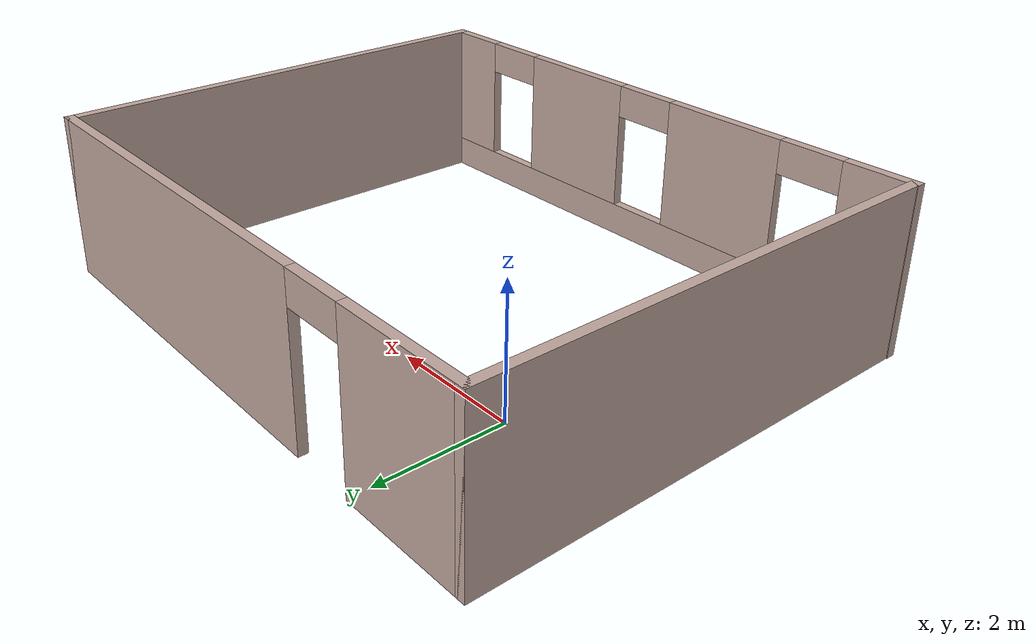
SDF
<?xml version='1.0'?>
<sdf version='1.6'>
  <model name='room'>
    <pose frame=''>2.49494 -1.375 0 0 -0 0</pose>
    <link name='Wall_10'>
      <collision name='Wall_10_Collision'>
        <geometry>
          <box>
            <size>7.4 0.15 2.5</size>
          </box>
        </geometry>
        <pose frame=''>0 0 1.25 0 -0 0</pose>
      </collision>
      <visual name='Wall_10_Visual'>
        <pose frame=''>0 0 1.25 0 -0 0</pose>
        <geometry>
          <box>
            <size>7.4 0.15 2.5</size>
          </box>
        </geometry>
        <material>
          <script>
            <uri>file://media/materials/scripts/gazebo.material</uri>
            <name>Gazebo/Grey</name>
          </script>
          <ambient>0.760784 0.662745 0.627451 1</ambient>
        </material>
      </visual>
      <pose frame=''>-4.49494 0 0 0 -0 1.5708</pose>
    </link>
    <link name='Wall_12'>
      <collision name='Wall_12_Collision'>
        <geometry>
          <box>
            <size>7.4 0.15 2.5</size>
          </box>
        </geometry>
        <pose frame=''>0 0 1.25 0 -0 0</pose>
      </collision>
      <visual name='Wall_12_Visual'>
        <pose frame=''>0 0 1.25 0 -0 0</pose>
        <geometry>
          <box>
            <size>7.4 0.15 2.5</size>
          </box>
        </geometry>
        <material>
          <script>
            <uri>file://media/materials/scripts/gazebo.material</uri>
            <name>Gazebo/Grey</name>
          </script>
          <ambient>0.760784 0.662745 0.627451 1</ambient>
        </material>
      </visual>
      <pose frame=''>4.50506 0 0 0 -0 1.5708</pose>
    </link>
    <link name='Wall_3'>
      <pose frame=''>0.005064 3.625 0 0 -0 0</pose>
      <visual name='Wall_3_Visual_0'>
        <pose frame=''>-3.5375 0 1.25 0 -0 0</pose>
        <geometry>
          <box>
            <size>2.075 0.15 2.5</size>
          </box>
        </geometry>
        <material>
          <script>
            <uri>file://media/materials/scripts/gazebo.material</uri>
            <name>Gazebo/Grey</name>
          </script>
          <ambient>0.760784 0.662745 0.627451 1</ambient>
        </material>
      </visual>
      <collision name='Wall_3_Collision_0'>
        <geometry>
          <box>
            <size>2.075 0.15 2.5</size>
          </box>
        </geometry>
        <pose frame=''>-3.5375 0 1.25 0 -0 0</pose>
      </collision>
      <visual name='Wall_3_Visual_1'>
        <pose frame=''>1.5375 0 1.25 0 -0 0</pose>
        <geometry>
          <box>
            <size>6.075 0.15 2.5</size>
          </box>
        </geometry>
        <material>
          <script>
            <uri>file://media/materials/scripts/gazebo.material</uri>
            <name>Gazebo/Grey</name>
          </script>
          <ambient>0.760784 0.662745 0.627451 1</ambient>
        </material>
      </visual>
      <collision name='Wall_3_Collision_1'>
        <geometry>
          <box>
            <size>6.075 0.15 2.5</size>
          </box>
        </geometry>
        <pose frame=''>1.5375 0 1.25 0 -0 0</pose>
      </collision>
      <visual name='Wall_3_Visual_2'>
        <pose frame=''>-2 0 2.25 0 -0 0</pose>
        <geometry>
          <box>
            <size>1 0.15 0.5</size>
          </box>
        </geometry>
        <material>
          <script>
            <uri>file://media/materials/scripts/gazebo.material</uri>
            <name>Gazebo/Grey</name>
          </script>
          <ambient>0.760784 0.662745 0.627451 1</ambient>
        </material>
      </visual>
      <collision name='Wall_3_Collision_2'>
        <geometry>
          <box>
            <size>1 0.15 0.5</size>
          </box>
        </geometry>
        <pose frame=''>-2 0 2.25 0 -0 0</pose>
      </collision>
    </link>
    <link name='Wall_8'>
      <pose frame=''>-0.005064 -3.625 0 0 -0 0</pose>
      <visual name='Wall_8_Visual_0'>
        <pose frame=''>-4.03244 0 1.25 0 -0 0</pose>
        <geometry>
          <box>
            <size>1.08513 0.15 2.5</size>
          </box>
        </geometry>
        <material>
          <script>
            <uri>file://media/materials/scripts/gazebo.material</uri>
            <name>Gazebo/Grey</name>
          </script>
          <ambient>0.760784 0.662745 0.627451 1</ambient>
        </material>
      </visual>
      <collision name='Wall_8_Collision_0'>
        <geometry>
          <box>
            <size>1.08513 0.15 2.5</size>
          </box>
        </geometry>
        <pose frame=''>-4.03244 0 1.25 0 -0 0</pose>
      </collision>
      <visual name='Wall_8_Visual_1'>
        <pose frame=''>0.542564 0 0.25 0 -0 0</pose>
        <geometry>
          <box>
            <size>8.06487 0.15 0.5</size>
          </box>
        </geometry>
        <material>
          <script>
            <uri>file://media/materials/scripts/gazebo.material</uri>
            <name>Gazebo/Grey</name>
          </script>
          <ambient>0.760784 0.662745 0.627451 1</ambient>
        </material>
      </visual>
      <collision name='Wall_8_Collision_1'>
        <geometry>
          <box>
            <size>8.06487 0.15 0.5</size>
          </box>
        </geometry>
        <pose frame=''>0.542564 0 0.25 0 -0 0</pose>
      </collision>
      <visual name='Wall_8_Visual_2'>
        <pose frame=''>-1.48987 0 1.5 0 -0 0</pose>
        <geometry>
          <box>
            <size>2 0.15 2</size>
          </box>
        </geometry>
        <material>
          <script>
            <uri>file://media/materials/scripts/gazebo.material</uri>
            <name>Gazebo/Grey</name>
          </script>
          <ambient>0.760784 0.662745 0.627451 1</ambient>
        </material>
      </visual>
      <collision name='Wall_8_Collision_2'>
        <geometry>
          <box>
            <size>2 0.15 2</size>
          </box>
        </geometry>
        <pose frame=''>-1.48987 0 1.5 0 -0 0</pose>
      </collision>
      <visual name='Wall_8_Visual_3'>
        <pose frame=''>1.51013 0 1.5 0 -0 0</pose>
        <geometry>
          <box>
            <size>2 0.15 2</size>
          </box>
        </geometry>
        <material>
          <script>
            <uri>file://media/materials/scripts/gazebo.material</uri>
            <name>Gazebo/Grey</name>
          </script>
          <ambient>0.760784 0.662745 0.627451 1</ambient>
        </material>
      </visual>
      <collision name='Wall_8_Collision_3'>
        <geometry>
          <box>
            <size>2 0.15 2</size>
          </box>
        </geometry>
        <pose frame=''>1.51013 0 1.5 0 -0 0</pose>
      </collision>
      <visual name='Wall_8_Visual_4'>
        <pose frame=''>4.04256 0 1.5 0 -0 0</pose>
        <geometry>
          <box>
            <size>1.06487 0.15 2</size>
          </box>
        </geometry>
        <material>
          <script>
            <uri>file://media/materials/scripts/gazebo.material</uri>
            <name>Gazebo/Grey</name>
          </script>
          <ambient>0.760784 0.662745 0.627451 1</ambient>
        </material>
      </visual>
      <collision name='Wall_8_Collision_4'>
        <geometry>
          <box>
            <size>1.06487 0.15 2</size>
          </box>
        </geometry>
        <pose frame=''>4.04256 0 1.5 0 -0 0</pose>
      </collision>
      <visual name='Wall_8_Visual_5'>
        <pose frame=''>-2.98987 0 2.25 0 -0 0</pose>
        <geometry>
          <box>
            <size>1 0.15 0.5</size>
          </box>
        </geometry>
        <material>
          <script>
            <uri>file://media/materials/scripts/gazebo.material</uri>
            <name>Gazebo/Grey</name>
          </script>
          <ambient>0.760784 0.662745 0.627451 1</ambient>
        </material>
      </visual>
      <collision name='Wall_8_Collision_5'>
        <geometry>
          <box>
            <size>1 0.15 0.5</size>
          </box>
        </geometry>
        <pose frame=''>-2.98987 0 2.25 0 -0 0</pose>
      </collision>
      <visual name='Wall_8_Visual_6'>
        <pose frame=''>0.010128 0 2.25 0 -0 0</pose>
        <geometry>
          <box>
            <size>1 0.15 0.5</size>
          </box>
        </geometry>
        <material>
          <script>
            <uri>file://media/materials/scripts/gazebo.material</uri>
            <name>Gazebo/Grey</name>
          </script>
          <ambient>0.760784 0.662745 0.627451 1</ambient>
        </material>
      </visual>
      <collision name='Wall_8_Collision_6'>
        <geometry>
          <box>
            <size>1 0.15 0.5</size>
          </box>
        </geometry>
        <pose frame=''>0.010128 0 2.25 0 -0 0</pose>
      </collision>
      <visual name='Wall_8_Visual_7'>
        <pose frame=''>3.01013 0 2.25 0 -0 0</pose>
        <geometry>
          <box>
            <size>1 0.15 0.5</size>
          </box>
        </geometry>
        <material>
          <script>
            <uri>file://media/materials/scripts/gazebo.material</uri>
            <name>Gazebo/Grey</name>
          </script>
          <ambient>0.760784 0.662745 0.627451 1</ambient>
        </material>
      </visual>
      <collision name='Wall_8_Collision_7'>
        <geometry>
          <box>
            <size>1 0.15 0.5</size>
          </box>
        </geometry>
        <pose frame=''>3.01013 0 2.25 0 -0 0</pose>
      </collision>
    </link>
    <static>1</static>
  </model>
</sdf>
